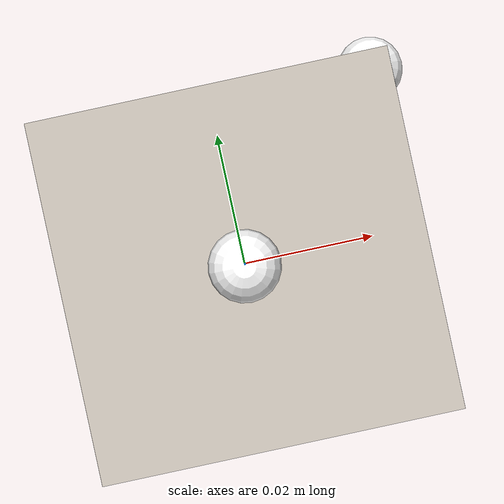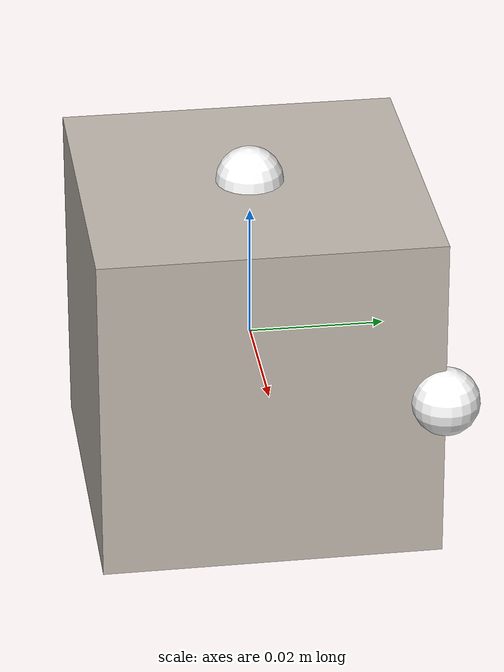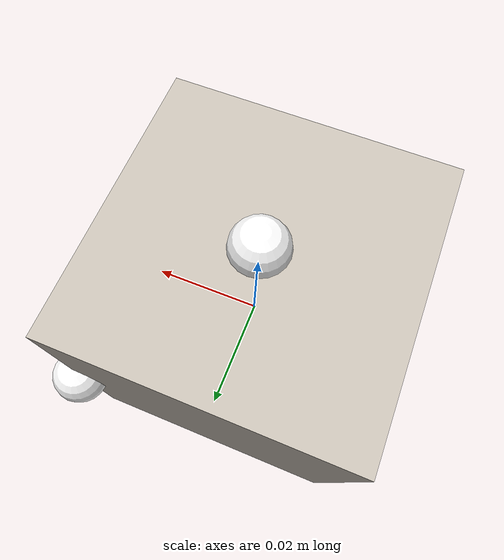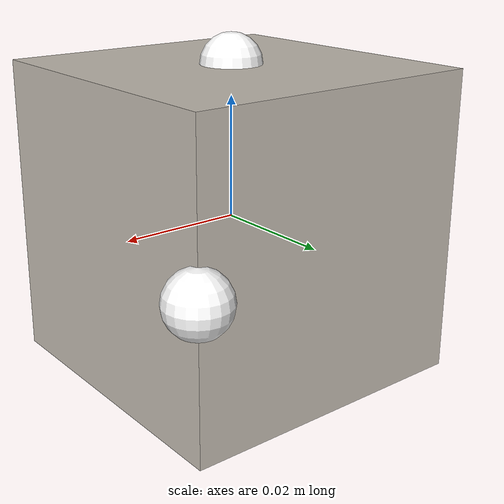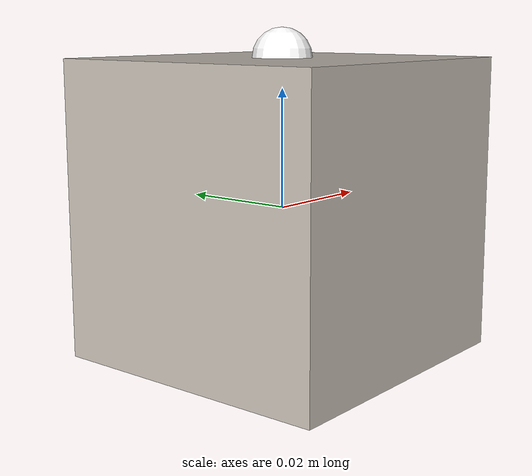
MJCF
<mujoco model="custom-cube">
  <asset>
    <texture name="texture:block" file="../textures/block.png" gridsize="3 4" gridlayout=".U..LFRB.D.." />
    <material name="material:block" texture="texture:block" specular="1" shininess="0.3" reflectance="0" />
  </asset>
  <worldbody>
    <body>
      <body name="collision">
        <geom pos="0 0 0" type="box" size="0.025 0.025 0.025" solimp="0.998 0.998 0.001" solref="0.001 1" density="100" friction="0.95 0.3 0.1" material="material:block" group="1" condim="4"/>
      </body>

      <body name="visual">
        <geom pos="0 0 0" type="box" size="0.025 0.025 0.025" solimp="0.998 0.998 0.001" solref="0.001 1" density="100" friction="0.95 0.3 0.1" material="material:block" group="1" condim="4"/>
      </body>

      <site rgba="1 1 1 1" size="0.005" pos="0 0 -0.025" name="bottom_site"/>
      <site rgba="1 1 1 1" size="0.005" pos="0 0 0.025" name="top_site"/>
      <site rgba="1 1 1 1" size="0.005" pos="0.025 0.025 0" name="horizontal_radius_site"/>
    </body>
  </worldbody>
</mujoco>
